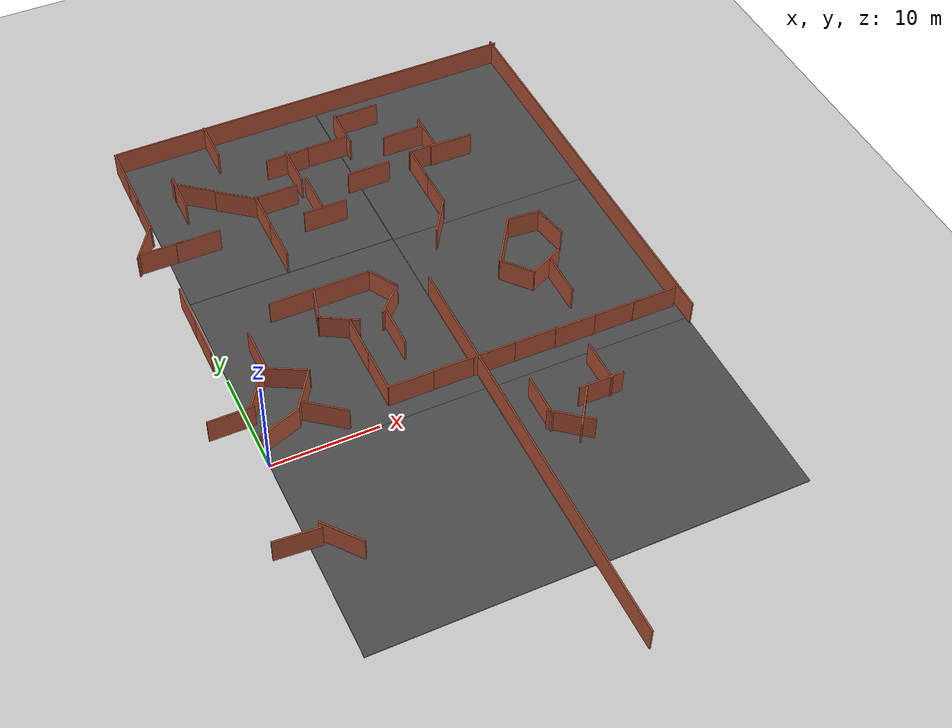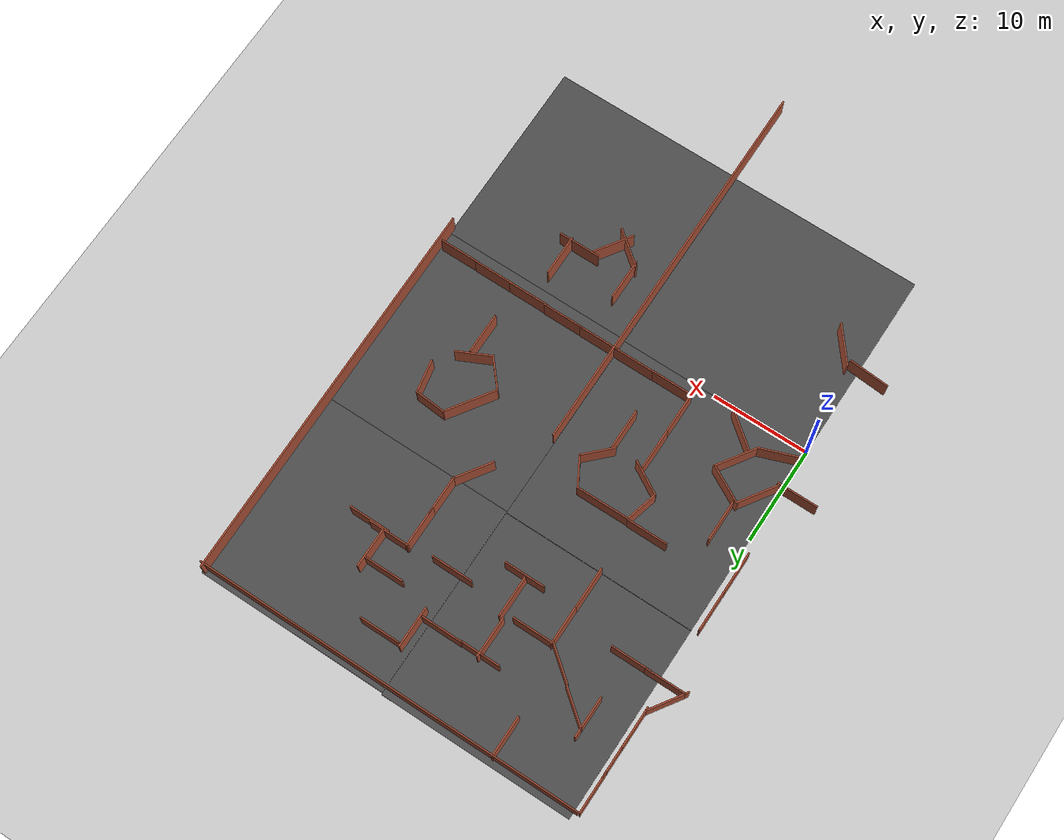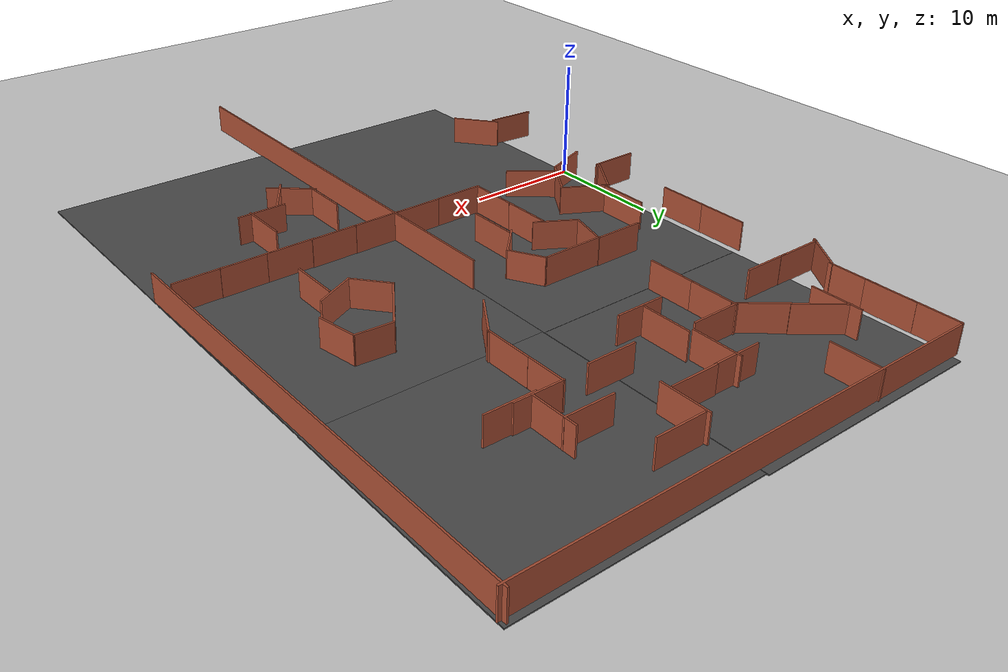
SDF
<sdf version="1.6">
 <world name="default">
  <model name="ground_plane">
   <static>1</static>
   <link name="link">
    <collision name="collision">
     <geometry><plane><normal>0 0 1</normal><size>100 100</size></plane></geometry>
     <surface><friction><ode><mu>100</mu><mu2>50</mu2></ode></friction></surface>
    </collision>
    <visual name="visual">
     <cast_shadows>0</cast_shadows>
     <geometry><plane><normal>0 0 1</normal><size>100 100</size></plane></geometry>
     <material>
      <script><uri>file://media/materials/scripts/gazebo.material</uri><name>Gazebo/Grey</name></script>
     </material>
    </visual>
   </link>
  </model>
  <model name="asphalt_plane">
   <static>1</static>
   <link name="link">
    <collision name="collision"><geometry><box><size>20 20 0.1</size></box></geometry></collision>
    <visual name="visual">
     <cast_shadows>0</cast_shadows>
     <geometry><box><size>20 20 0.1</size></box></geometry>
     <material>
      <script>
       <uri>model://asphalt_plane/materials/scripts</uri>
       <uri>model://asphalt_plane/materials/textures</uri>
       <name>vrc/asphalt</name>
      </script>
     </material>
    </visual>
   </link>
   <pose>10 10 0 0 -0 0</pose>
  </model>
  <model name="asphalt_plane_2">
   <static>1</static>
   <link name="link">
    <collision name="collision"><geometry><box><size>20 20 0.1</size></box></geometry></collision>
    <visual name="visual">
     <cast_shadows>0</cast_shadows>
     <geometry><box><size>20 20 0.1</size></box></geometry>
     <material>
      <script>
       <uri>model://asphalt_plane/materials/scripts</uri>
       <uri>model://asphalt_plane/materials/textures</uri>
       <name>vrc/asphalt</name>
      </script>
     </material>
    </visual>
   </link>
   <pose>10 -10 0 0 -0 0</pose>
  </model>
  <model name="longwall_0_clone">
   <pose>20.0948 -8.17942 0 0 0 -1.57092</pose>
   <link name="Wall_0">
    <collision name="Wall_0_Collision">
     <geometry><box><size>40.5 0.15 2.5</size></box></geometry>
     <pose>0 0 1.25 0 -0 0</pose>
    </collision>
    <visual name="Wall_0_Visual">
     <pose>0 0 1.25 0 -0 0</pose>
     <geometry><box><size>40.5 0.15 2.5</size></box></geometry>
     <material>
      <script><uri>file://media/materials/scripts/gazebo.material</uri><name>Gazebo/Bricks</name></script>
      <ambient>1 1 1 1</ambient>
     </material>
    </visual>
    <pose>1e-06 0 0 0 -0 0</pose>
   </link>
   <static>1</static>
  </model>
  <model name="room1">
   <pose>13.1523 12.4323 0 0 -0 0</pose>
   <link name="Wall_11">
    <collision name="Wall_11_Collision">
     <geometry><box><size>3.25 0.15 2.5</size></box></geometry>
     <pose>0 0 1.25 0 -0 0</pose>
    </collision>
    <visual name="Wall_11_Visual">
     <pose>0 0 1.25 0 -0 0</pose>
     <geometry><box><size>3.25 0.15 2.5</size></box></geometry>
     <material>
      <script><uri>file://media/materials/scripts/gazebo.material</uri><name>Gazebo/Bricks</name></script>
      <ambient>1 1 1 1</ambient>
     </material>
    </visual>
    <pose>3.12132 1.19483 0 0 0 -1.0472</pose>
   </link>
   <link name="Wall_12">
    <collision name="Wall_12_Collision">
     <geometry><box><size>3.5 0.15 2.5</size></box></geometry>
     <pose>0 0 1.25 0 -0 0</pose>
    </collision>
    <visual name="Wall_12_Visual">
     <pose>0 0 1.25 0 -0 0</pose>
     <geometry><box><size>3.5 0.15 2.5</size></box></geometry>
     <material>
      <script><uri>file://media/materials/scripts/gazebo.material</uri><name>Gazebo/Bricks</name></script>
      <ambient>1 1 1 1</ambient>
     </material>
    </visual>
    <pose>2.71192 -1.33192 0 0 0 -2.35619</pose>
   </link>
   <link name="Wall_7">
    <collision name="Wall_7_Collision">
     <geometry><box><size>5.52935 0.15 2.5</size></box></geometry>
     <pose>0 0 1.25 0 -0 0</pose>
    </collision>
    <visual name="Wall_7_Visual">
     <pose>0 0 1.25 0 -0 0</pose>
     <geometry><box><size>5.52935 0.15 2.5</size></box></geometry>
     <material>
      <script><uri>file://media/materials/scripts/gazebo.material</uri><name>Gazebo/Bricks</name></script>
      <ambient>1 1 1 1</ambient>
     </material>
    </visual>
    <pose>-0.343285 2.51793 0 0 0 -3.13444</pose>
   </link>
   <link name="Wall_8">
    <collision name="Wall_8_Collision">
     <geometry><box><size>3.5 0.15 2.5</size></box></geometry>
     <pose>0 0 1.25 0 -0 0</pose>
    </collision>
    <visual name="Wall_8_Visual">
     <pose>0 0 1.25 0 -0 0</pose>
     <geometry><box><size>3.5 0.15 2.5</size></box></geometry>
     <material>
      <script><uri>file://media/materials/scripts/gazebo.material</uri><name>Gazebo/Bricks</name></script>
      <ambient>1 1 1 1</ambient>
     </material>
    </visual>
    <pose>-3.46641 0.880761 0 0 0 -1.8326</pose>
   </link>
   <link name="Wall_9">
    <collision name="Wall_9_Collision">
     <geometry><box><size>3.75 0.15 2.5</size></box></geometry>
     <pose>0 0 1.25 0 -0 0</pose>
    </collision>
    <visual name="Wall_9_Visual">
     <pose>0 0 1.25 0 -0 0</pose>
     <geometry><box><size>3.75 0.15 2.5</size></box></geometry>
     <material>
      <script><uri>file://media/materials/scripts/gazebo.material</uri><name>Gazebo/Bricks</name></script>
      <ambient>1 1 1 1</ambient>
     </material>
    </visual>
    <pose>-2.34109 -1.63716 0 0 0 -0.523599</pose>
   </link>
   <static>1</static>
  </model>
  <model name="worlds_1">
   <pose>3 10.4406 0 0 -0 0</pose>
   <link name="Wall_0">
    <collision name="Wall_0_Collision">
     <geometry><box><size>4.25 0.15 2.5</size></box></geometry>
     <pose>0 0 1.25 0 -0 0</pose>
    </collision>
    <visual name="Wall_0_Visual">
     <pose>0 0 1.25 0 -0 0</pose>
     <geometry><box><size>4.25 0.15 2.5</size></box></geometry>
     <material>
      <script><uri>file://media/materials/scripts/gazebo.material</uri><name>Gazebo/Bricks</name></script>
      <ambient>1 1 1 1</ambient>
     </material>
    </visual>
    <pose>0 -0 0 0 -0 1.5708</pose>
   </link>
   <static>1</static>
  </model>
  <model name="worlds_2">
   <pose>4.42901 7.33195 0 0 -0 1.08023</pose>
   <link name="Wall_0">
    <collision name="Wall_0_Collision">
     <geometry><box><size>4.25 0.15 2.5</size></box></geometry>
     <pose>0 0 1.25 0 -0 0</pose>
    </collision>
    <visual name="Wall_0_Visual">
     <pose>0 0 1.25 0 -0 0</pose>
     <geometry><box><size>4.25 0.15 2.5</size></box></geometry>
     <material>
      <script><uri>file://media/materials/scripts/gazebo.material</uri><name>Gazebo/Bricks</name></script>
      <ambient>1 1 1 1</ambient>
     </material>
    </visual>
    <pose>0 -0 0 0 -0 1.5708</pose>
   </link>
   <static>1</static>
  </model>
  <model name="worlds_0_clone">
   <pose>-1 -9 0 0 -0 1.49697</pose>
   <link name="Wall_0">
    <collision name="Wall_0_Collision">
     <geometry><box><size>4.25 0.15 2.5</size></box></geometry>
     <pose>0 0 1.25 0 -0 0</pose>
    </collision>
    <visual name="Wall_0_Visual">
     <pose>0 0 1.25 0 -0 0</pose>
     <geometry><box><size>4.25 0.15 2.5</size></box></geometry>
     <material>
      <script><uri>file://media/materials/scripts/gazebo.material</uri><name>Gazebo/Bricks</name></script>
      <ambient>1 1 1 1</ambient>
     </material>
    </visual>
    <pose>0 -0 0 0 -0 1.5708</pose>
   </link>
   <static>1</static>
  </model>
  <model name="worlds_2_clone">
   <pose>2.34689 -10.1873 0 0 -0 0.67691</pose>
   <link name="Wall_0">
    <collision name="Wall_0_Collision">
     <geometry><box><size>4.25 0.15 2.5</size></box></geometry>
     <pose>0 0 1.25 0 -0 0</pose>
    </collision>
    <visual name="Wall_0_Visual">
     <pose>0 0 1.25 0 -0 0</pose>
     <geometry><box><size>4.25 0.15 2.5</size></box></geometry>
     <material>
      <script><uri>file://media/materials/scripts/gazebo.material</uri><name>Gazebo/Bricks</name></script>
      <ambient>1 1 1 1</ambient>
     </material>
    </visual>
    <pose>0 -0 0 0 -0 1.5708</pose>
   </link>
   <static>1</static>
  </model>
  <model name="worlds_1_clone">
   <pose>11.6021 8.07399 0 0 -0 0</pose>
   <link name="Wall_0">
    <collision name="Wall_0_Collision">
     <geometry><box><size>4.25 0.15 2.5</size></box></geometry>
     <pose>0 0 1.25 0 -0 0</pose>
    </collision>
    <visual name="Wall_0_Visual">
     <pose>0 0 1.25 0 -0 0</pose>
     <geometry><box><size>4.25 0.15 2.5</size></box></geometry>
     <material>
      <script><uri>file://media/materials/scripts/gazebo.material</uri><name>Gazebo/Bricks</name></script>
      <ambient>1 1 1 1</ambient>
     </material>
    </visual>
    <pose>0 -0 0 0 -0 1.5708</pose>
   </link>
   <static>1</static>
  </model>
  <model name="worlds_1_clone_0">
   <pose>11.6134 3.89135 0 0 -0 0</pose>
   <link name="Wall_0">
    <collision name="Wall_0_Collision">
     <geometry><box><size>4.25 0.15 2.5</size></box></geometry>
     <pose>0 0 1.25 0 -0 0</pose>
    </collision>
    <visual name="Wall_0_Visual">
     <pose>0 0 1.25 0 -0 0</pose>
     <geometry><box><size>4.25 0.15 2.5</size></box></geometry>
     <material>
      <script><uri>file://media/materials/scripts/gazebo.material</uri><name>Gazebo/Bricks</name></script>
      <ambient>1 1 1 1</ambient>
     </material>
    </visual>
    <pose>0 -0 0 0 -0 1.5708</pose>
   </link>
   <static>1</static>
  </model>
  <model name="worlds_1_clone_0_clone">
   <pose>13.736 1.79456 0 0 0 -1.57092</pose>
   <link name="Wall_0">
    <collision name="Wall_0_Collision">
     <geometry><box><size>4.25 0.15 2.5</size></box></geometry>
     <pose>0 0 1.25 0 -0 0</pose>
    </collision>
    <visual name="Wall_0_Visual">
     <pose>0 0 1.25 0 -0 0</pose>
     <geometry><box><size>4.25 0.15 2.5</size></box></geometry>
     <material>
      <script><uri>file://media/materials/scripts/gazebo.material</uri><name>Gazebo/Bricks</name></script>
      <ambient>1 1 1 1</ambient>
     </material>
    </visual>
    <pose>0 -0 0 0 -0 1.5708</pose>
   </link>
   <static>1</static>
  </model>
  <model name="worlds_1_clone_0_clone_clone">
   <pose>17.9203 1.82357 0 0 0 -1.57092</pose>
   <link name="Wall_0">
    <collision name="Wall_0_Collision">
     <geometry><box><size>4.25 0.15 2.5</size></box></geometry>
     <pose>0 0 1.25 0 -0 0</pose>
    </collision>
    <visual name="Wall_0_Visual">
     <pose>0 0 1.25 0 -0 0</pose>
     <geometry><box><size>4.25 0.15 2.5</size></box></geometry>
     <material>
      <script><uri>file://media/materials/scripts/gazebo.material</uri><name>Gazebo/Bricks</name></script>
      <ambient>1 1 1 1</ambient>
     </material>
    </visual>
    <pose>0 -0 0 0 -0 1.5708</pose>
   </link>
   <static>1</static>
  </model>
  <model name="worlds_1_clone_0_clone_clone_0">
   <pose>8 15 0 0 0 -1.57092</pose>
   <link name="Wall_0">
    <collision name="Wall_0_Collision">
     <geometry><box><size>4.25 0.15 2.5</size></box></geometry>
     <pose>0 0 1.25 0 -0 0</pose>
    </collision>
    <visual name="Wall_0_Visual">
     <pose>0 0 1.25 0 -0 0</pose>
     <geometry><box><size>4.25 0.15 2.5</size></box></geometry>
     <material>
      <script><uri>file://media/materials/scripts/gazebo.material</uri><name>Gazebo/Bricks</name></script>
      <ambient>1 1 1 1</ambient>
     </material>
    </visual>
    <pose>0 -0 0 0 -0 1.5708</pose>
   </link>
   <static>1</static>
  </model>
  <model name="worlds_1_clone_1_clone_0">
   <pose>-0.708445 17.9147 0 0 -0 0</pose>
   <link name="Wall_0">
    <collision name="Wall_0_Collision">
     <geometry><box><size>4.25 0.15 2.5</size></box></geometry>
     <pose>0 0 1.25 0 -0 0</pose>
    </collision>
    <visual name="Wall_0_Visual">
     <pose>0 0 1.25 0 -0 0</pose>
     <geometry><box><size>4.25 0.15 2.5</size></box></geometry>
     <material>
      <script><uri>file://media/materials/scripts/gazebo.material</uri><name>Gazebo/Bricks</name></script>
      <ambient>1 1 1 1</ambient>
     </material>
    </visual>
    <pose>0 -0 0 0 -0 1.5708</pose>
   </link>
   <static>1</static>
  </model>
  <model name="worlds_1_clone_1_clone_1">
   <pose>-0.716318 13.714 0 0 -0 0</pose>
   <link name="Wall_0">
    <collision name="Wall_0_Collision">
     <geometry><box><size>4.25 0.15 2.5</size></box></geometry>
     <pose>0 0 1.25 0 -0 0</pose>
    </collision>
    <visual name="Wall_0_Visual">
     <pose>0 0 1.25 0 -0 0</pose>
     <geometry><box><size>4.25 0.15 2.5</size></box></geometry>
     <material>
      <script><uri>file://media/materials/scripts/gazebo.material</uri><name>Gazebo/Bricks</name></script>
      <ambient>1 1 1 1</ambient>
     </material>
    </visual>
    <pose>0 -0 0 0 -0 1.5708</pose>
   </link>
   <static>1</static>
  </model>
  <model name="worlds_1_clone_1_clone_7_clone_clone">
   <pose>1.48825 6.4581 0 0 0 -0.589381</pose>
   <link name="Wall_0">
    <collision name="Wall_0_Collision">
     <geometry><box><size>4.25 0.15 2.5</size></box></geometry>
     <pose>0 0 1.25 0 -0 0</pose>
    </collision>
    <visual name="Wall_0_Visual">
     <pose>0 0 1.25 0 -0 0</pose>
     <geometry><box><size>4.25 0.15 2.5</size></box></geometry>
     <material>
      <script><uri>file://media/materials/scripts/gazebo.material</uri><name>Gazebo/Bricks</name></script>
      <ambient>1 1 1 1</ambient>
     </material>
    </visual>
    <pose>0 -0 0 0 -0 1.5708</pose>
   </link>
   <static>1</static>
  </model>
  <model name="worlds_1_clone_1_clone_7_clone_clone_clone">
   <pose>5 4.58681 0 0 0 -0.589381</pose>
   <link name="Wall_0">
    <collision name="Wall_0_Collision">
     <geometry><box><size>4.25 0.15 2.5</size></box></geometry>
     <pose>0 0 1.25 0 -0 0</pose>
    </collision>
    <visual name="Wall_0_Visual">
     <pose>0 0 1.25 0 -0 0</pose>
     <geometry><box><size>4.25 0.15 2.5</size></box></geometry>
     <material>
      <script><uri>file://media/materials/scripts/gazebo.material</uri><name>Gazebo/Bricks</name></script>
      <ambient>1 1 1 1</ambient>
     </material>
    </visual>
    <pose>0 -0 0 0 -0 1.5708</pose>
   </link>
   <static>1</static>
  </model>
  <model name="worlds_1_clone_0_clone_clone_0_clone_clone_0_clone_clone">
   <pose>-1.54431 4.60476 0 0 0 -1.57092</pose>
   <link name="Wall_0">
    <collision name="Wall_0_Collision">
     <geometry><box><size>4.25 0.15 2.5</size></box></geometry>
     <pose>0 0 1.25 0 -0 0</pose>
    </collision>
    <visual name="Wall_0_Visual">
     <pose>0 0 1.25 0 -0 0</pose>
     <geometry><box><size>4.25 0.15 2.5</size></box></geometry>
     <material>
      <script><uri>file://media/materials/scripts/gazebo.material</uri><name>Gazebo/Bricks</name></script>
      <ambient>1 1 1 1</ambient>
     </material>
    </visual>
    <pose>0 -0 0 0 -0 1.5708</pose>
   </link>
   <static>1</static>
  </model>
  <model name="worlds_1_clone_0_clone_clone_0_clone_clone_0_clone_clone_0">
   <pose>1.87166 2.0906 0 0 0 -1.22347</pose>
   <link name="Wall_0">
    <collision name="Wall_0_Collision">
     <geometry><box><size>4.25 0.15 2.5</size></box></geometry>
     <pose>0 0 1.25 0 -0 0</pose>
    </collision>
    <visual name="Wall_0_Visual">
     <pose>0 0 1.25 0 -0 0</pose>
     <geometry><box><size>4.25 0.15 2.5</size></box></geometry>
     <material>
      <script><uri>file://media/materials/scripts/gazebo.material</uri><name>Gazebo/Bricks</name></script>
      <ambient>1 1 1 1</ambient>
     </material>
    </visual>
    <pose>0 -0 0 0 -0 1.5708</pose>
   </link>
   <static>1</static>
  </model>
  <model name="worlds_1_clone_1_clone_7_clone_clone_0">
   <pose>6.00131 2.13117 0 0 -0 0.90029</pose>
   <link name="Wall_0">
    <collision name="Wall_0_Collision">
     <geometry><box><size>4.25 0.15 2.5</size></box></geometry>
     <pose>0 0 1.25 0 -0 0</pose>
    </collision>
    <visual name="Wall_0_Visual">
     <pose>0 0 1.25 0 -0 0</pose>
     <geometry><box><size>4.25 0.15 2.5</size></box></geometry>
     <material>
      <script><uri>file://media/materials/scripts/gazebo.material</uri><name>Gazebo/Bricks</name></script>
      <ambient>1 1 1 1</ambient>
     </material>
    </visual>
    <pose>0 -0 0 0 -0 1.5708</pose>
   </link>
   <static>1</static>
  </model>
  <model name="worlds_1_clone_clone">
   <pose>15 8 0 0 -0 0</pose>
   <link name="Wall_0">
    <collision name="Wall_0_Collision">
     <geometry><box><size>4.25 0.15 2.5</size></box></geometry>
     <pose>0 0 1.25 0 -0 0</pose>
    </collision>
    <visual name="Wall_0_Visual">
     <pose>0 0 1.25 0 -0 0</pose>
     <geometry><box><size>4.25 0.15 2.5</size></box></geometry>
     <material>
      <script><uri>file://media/materials/scripts/gazebo.material</uri><name>Gazebo/Bricks</name></script>
      <ambient>1 1 1 1</ambient>
     </material>
    </visual>
    <pose>0 -0 0 0 -0 1.5708</pose>
   </link>
   <static>1</static>
  </model>
  <model name="asphalt_plane_4_clone_2">
   <static>1</static>
   <link name="link">
    <collision name="collision"><geometry><box><size>20 20 0.1</size></box></geometry></collision>
    <visual name="visual">
     <cast_shadows>0</cast_shadows>
     <geometry><box><size>20 20 0.1</size></box></geometry>
     <material>
      <script>
       <uri>model://asphalt_plane/materials/scripts</uri>
       <uri>model://asphalt_plane/materials/textures</uri>
       <name>vrc/asphalt</name>
      </script>
     </material>
    </visual>
   </link>
   <pose>30.0276 29.8546 0 0 -0 0</pose>
  </model>
  <model name="asphalt_plane_4_clone_3">
   <static>1</static>
   <link name="link">
    <collision name="collision"><geometry><box><size>20 20 0.1</size></box></geometry></collision>
    <visual name="visual">
     <cast_shadows>0</cast_shadows>
     <geometry><box><size>20 20 0.1</size></box></geometry>
     <material>
      <script>
       <uri>model://asphalt_plane/materials/scripts</uri>
       <uri>model://asphalt_plane/materials/textures</uri>
       <name>vrc/asphalt</name>
      </script>
     </material>
    </visual>
   </link>
   <pose>9.98908 30.0241 0 0 -0 0</pose>
  </model>
  <model name="asphalt_plane_4_clone_8">
   <static>1</static>
   <link name="link">
    <collision name="collision"><geometry><box><size>20 20 0.1</size></box></geometry></collision>
    <visual name="visual">
     <cast_shadows>0</cast_shadows>
     <geometry><box><size>20 20 0.1</size></box></geometry>
     <material>
      <script>
       <uri>model://asphalt_plane/materials/scripts</uri>
       <uri>model://asphalt_plane/materials/textures</uri>
       <name>vrc/asphalt</name>
      </script>
     </material>
    </visual>
   </link>
   <pose>29.9869 -10.112 0 0 -0 0</pose>
  </model>
  <model name="asphalt_plane_4_clone_13">
   <static>1</static>
   <link name="link">
    <collision name="collision"><geometry><box><size>20 20 0.1</size></box></geometry></collision>
    <visual name="visual">
     <cast_shadows>0</cast_shadows>
     <geometry><box><size>20 20 0.1</size></box></geometry>
     <material>
      <script>
       <uri>model://asphalt_plane/materials/scripts</uri>
       <uri>model://asphalt_plane/materials/textures</uri>
       <name>vrc/asphalt</name>
      </script>
     </material>
    </visual>
   </link>
   <pose>30.0035 9.87573 0 0 -0 0</pose>
  </model>
  <model name="longwall_clone_clone">
   <pose>19.8044 39.2921 0 0 -0 0</pose>
   <link name="Wall_0">
    <collision name="Wall_0_Collision">
     <geometry><box><size>40.5 0.15 2.5</size></box></geometry>
     <pose>0 0 1.25 0 -0 0</pose>
    </collision>
    <visual name="Wall_0_Visual">
     <pose>0 0 1.25 0 -0 0</pose>
     <geometry><box><size>40.5 0.15 2.5</size></box></geometry>
     <material>
      <script><uri>file://media/materials/scripts/gazebo.material</uri><name>Gazebo/Bricks</name></script>
      <ambient>1 1 1 1</ambient>
     </material>
    </visual>
    <pose>1e-06 0 0 0 -0 0</pose>
   </link>
   <static>1</static>
  </model>
  <model name="longwall_clone_clone_3_clone_2">
   <pose>39.8062 19.4808 0 0 0 -1.56602</pose>
   <link name="Wall_0">
    <collision name="Wall_0_Collision">
     <geometry><box><size>40.5 0.15 2.5</size></box></geometry>
     <pose>0 0 1.25 0 -0 0</pose>
    </collision>
    <visual name="Wall_0_Visual">
     <pose>0 0 1.25 0 -0 0</pose>
     <geometry><box><size>40.5 0.15 2.5</size></box></geometry>
     <material>
      <script><uri>file://media/materials/scripts/gazebo.material</uri><name>Gazebo/Bricks</name></script>
      <ambient>1 1 1 1</ambient>
     </material>
    </visual>
    <pose>1e-06 0 0 0 -0 0</pose>
   </link>
   <static>1</static>
  </model>
  <model name="worlds_1_clone_0_clone_clone_0_clone_clone_clone">
   <pose>21.7506 1.79775 0 0 0 -1.57092</pose>
   <link name="Wall_0">
    <collision name="Wall_0_Collision">
     <geometry><box><size>4.25 0.15 2.5</size></box></geometry>
     <pose>0 0 1.25 0 -0 0</pose>
    </collision>
    <visual name="Wall_0_Visual">
     <pose>0 0 1.25 0 -0 0</pose>
     <geometry><box><size>4.25 0.15 2.5</size></box></geometry>
     <material>
      <script><uri>file://media/materials/scripts/gazebo.material</uri><name>Gazebo/Bricks</name></script>
      <ambient>1 1 1 1</ambient>
     </material>
    </visual>
    <pose>0 -0 0 0 -0 1.5708</pose>
   </link>
   <static>1</static>
  </model>
  <model name="worlds_1_clone_0_clone_clone_0_clone_clone_clone_0">
   <pose>25.7367 1.77784 0 0 0 -1.57092</pose>
   <link name="Wall_0">
    <collision name="Wall_0_Collision">
     <geometry><box><size>4.25 0.15 2.5</size></box></geometry>
     <pose>0 0 1.25 0 -0 0</pose>
    </collision>
    <visual name="Wall_0_Visual">
     <pose>0 0 1.25 0 -0 0</pose>
     <geometry><box><size>4.25 0.15 2.5</size></box></geometry>
     <material>
      <script><uri>file://media/materials/scripts/gazebo.material</uri><name>Gazebo/Bricks</name></script>
      <ambient>1 1 1 1</ambient>
     </material>
    </visual>
    <pose>0 -0 0 0 -0 1.5708</pose>
   </link>
   <static>1</static>
  </model>
  <model name="worlds_1_clone_0_clone_clone_0_clone_clone_clone_1">
   <pose>29.6674 1.71383 0 0 0 -1.57092</pose>
   <link name="Wall_0">
    <collision name="Wall_0_Collision">
     <geometry><box><size>4.25 0.15 2.5</size></box></geometry>
     <pose>0 0 1.25 0 -0 0</pose>
    </collision>
    <visual name="Wall_0_Visual">
     <pose>0 0 1.25 0 -0 0</pose>
     <geometry><box><size>4.25 0.15 2.5</size></box></geometry>
     <material>
      <script><uri>file://media/materials/scripts/gazebo.material</uri><name>Gazebo/Bricks</name></script>
      <ambient>1 1 1 1</ambient>
     </material>
    </visual>
    <pose>0 -0 0 0 -0 1.5708</pose>
   </link>
   <static>1</static>
  </model>
  <model name="worlds_1_clone_0_clone_clone_0_clone_clone_clone_2">
   <pose>33.5636 1.70747 0 0 0 -1.57092</pose>
   <link name="Wall_0">
    <collision name="Wall_0_Collision">
     <geometry><box><size>4.25 0.15 2.5</size></box></geometry>
     <pose>0 0 1.25 0 -0 0</pose>
    </collision>
    <visual name="Wall_0_Visual">
     <pose>0 0 1.25 0 -0 0</pose>
     <geometry><box><size>4.25 0.15 2.5</size></box></geometry>
     <material>
      <script><uri>file://media/materials/scripts/gazebo.material</uri><name>Gazebo/Bricks</name></script>
      <ambient>1 1 1 1</ambient>
     </material>
    </visual>
    <pose>0 -0 0 0 -0 1.5708</pose>
   </link>
   <static>1</static>
  </model>
  <model name="worlds_1_clone_0_clone_clone_0_clone_clone_clone_3">
   <pose>37.4411 1.6799 0 0 0 -1.57092</pose>
   <link name="Wall_0">
    <collision name="Wall_0_Collision">
     <geometry><box><size>4.25 0.15 2.5</size></box></geometry>
     <pose>0 0 1.25 0 -0 0</pose>
    </collision>
    <visual name="Wall_0_Visual">
     <pose>0 0 1.25 0 -0 0</pose>
     <geometry><box><size>4.25 0.15 2.5</size></box></geometry>
     <material>
      <script><uri>file://media/materials/scripts/gazebo.material</uri><name>Gazebo/Bricks</name></script>
      <ambient>1 1 1 1</ambient>
     </material>
    </visual>
    <pose>0 -0 0 0 -0 1.5708</pose>
   </link>
   <static>1</static>
  </model>
  <model name="room1_clone_2">
   <pose>30.5801 12.309 0 0 -0 0.969844</pose>
   <link name="Wall_11">
    <collision name="Wall_11_Collision">
     <geometry><box><size>3.25 0.15 2.5</size></box></geometry>
     <pose>0 0 1.25 0 -0 0</pose>
    </collision>
    <visual name="Wall_11_Visual">
     <pose>0 0 1.25 0 -0 0</pose>
     <geometry><box><size>3.25 0.15 2.5</size></box></geometry>
     <material>
      <script><uri>file://media/materials/scripts/gazebo.material</uri><name>Gazebo/Bricks</name></script>
      <ambient>1 1 1 1</ambient>
     </material>
    </visual>
    <pose>3.12132 1.19483 0 0 0 -1.0472</pose>
   </link>
   <link name="Wall_12">
    <collision name="Wall_12_Collision">
     <geometry><box><size>3.5 0.15 2.5</size></box></geometry>
     <pose>0 0 1.25 0 -0 0</pose>
    </collision>
    <visual name="Wall_12_Visual">
     <pose>0 0 1.25 0 -0 0</pose>
     <geometry><box><size>3.5 0.15 2.5</size></box></geometry>
     <material>
      <script><uri>file://media/materials/scripts/gazebo.material</uri><name>Gazebo/Bricks</name></script>
      <ambient>1 1 1 1</ambient>
     </material>
    </visual>
    <pose>2.71192 -1.33192 0 0 0 -2.35619</pose>
   </link>
   <link name="Wall_7">
    <collision name="Wall_7_Collision">
     <geometry><box><size>5.52935 0.15 2.5</size></box></geometry>
     <pose>0 0 1.25 0 -0 0</pose>
    </collision>
    <visual name="Wall_7_Visual">
     <pose>0 0 1.25 0 -0 0</pose>
     <geometry><box><size>5.52935 0.15 2.5</size></box></geometry>
     <material>
      <script><uri>file://media/materials/scripts/gazebo.material</uri><name>Gazebo/Bricks</name></script>
      <ambient>1 1 1 1</ambient>
     </material>
    </visual>
    <pose>-0.343285 2.51793 0 0 0 -3.13444</pose>
   </link>
   <link name="Wall_8">
    <collision name="Wall_8_Collision">
     <geometry><box><size>3.5 0.15 2.5</size></box></geometry>
     <pose>0 0 1.25 0 -0 0</pose>
    </collision>
    <visual name="Wall_8_Visual">
     <pose>0 0 1.25 0 -0 0</pose>
     <geometry><box><size>3.5 0.15 2.5</size></box></geometry>
     <material>
      <script><uri>file://media/materials/scripts/gazebo.material</uri><name>Gazebo/Bricks</name></script>
      <ambient>1 1 1 1</ambient>
     </material>
    </visual>
    <pose>-3.46641 0.880761 0 0 0 -1.8326</pose>
   </link>
   <link name="Wall_9">
    <collision name="Wall_9_Collision">
     <geometry><box><size>3.75 0.15 2.5</size></box></geometry>
     <pose>0 0 1.25 0 -0 0</pose>
    </collision>
    <visual name="Wall_9_Visual">
     <pose>0 0 1.25 0 -0 0</pose>
     <geometry><box><size>3.75 0.15 2.5</size></box></geometry>
     <material>
      <script><uri>file://media/materials/scripts/gazebo.material</uri><name>Gazebo/Bricks</name></script>
      <ambient>1 1 1 1</ambient>
     </material>
    </visual>
    <pose>-2.34109 -1.63716 0 0 0 -0.523599</pose>
   </link>
   <static>1</static>
  </model>
  <model name="worlds_1_clone_clone_clone">
   <pose>31.0446 7.33518 0 0 -0 0</pose>
   <link name="Wall_0">
    <collision name="Wall_0_Collision">
     <geometry><box><size>4.25 0.15 2.5</size></box></geometry>
     <pose>0 0 1.25 0 -0 0</pose>
    </collision>
    <visual name="Wall_0_Visual">
     <pose>0 0 1.25 0 -0 0</pose>
     <geometry><box><size>4.25 0.15 2.5</size></box></geometry>
     <material>
      <script><uri>file://media/materials/scripts/gazebo.material</uri><name>Gazebo/Bricks</name></script>
      <ambient>1 1 1 1</ambient>
     </material>
    </visual>
    <pose>0 -0 0 0 -0 1.5708</pose>
   </link>
   <static>1</static>
  </model>
  <model name="worlds_1_clone_clone_0">
   <pose>9.58446 22.2096 0 0 -0 0</pose>
   <link name="Wall_0">
    <collision name="Wall_0_Collision">
     <geometry><box><size>4.25 0.15 2.5</size></box></geometry>
     <pose>0 0 1.25 0 -0 0</pose>
    </collision>
    <visual name="Wall_0_Visual">
     <pose>0 0 1.25 0 -0 0</pose>
     <geometry><box><size>4.25 0.15 2.5</size></box></geometry>
     <material>
      <script><uri>file://media/materials/scripts/gazebo.material</uri><name>Gazebo/Bricks</name></script>
      <ambient>1 1 1 1</ambient>
     </material>
    </visual>
    <pose>0 -0 0 0 -0 1.5708</pose>
   </link>
   <static>1</static>
  </model>
  <model name="worlds_1_clone_clone_1">
   <pose>25.4189 22.4288 0 0 -0 0</pose>
   <link name="Wall_0">
    <collision name="Wall_0_Collision">
     <geometry><box><size>4.25 0.15 2.5</size></box></geometry>
     <pose>0 0 1.25 0 -0 0</pose>
    </collision>
    <visual name="Wall_0_Visual">
     <pose>0 0 1.25 0 -0 0</pose>
     <geometry><box><size>4.25 0.15 2.5</size></box></geometry>
     <material>
      <script><uri>file://media/materials/scripts/gazebo.material</uri><name>Gazebo/Bricks</name></script>
      <ambient>1 1 1 1</ambient>
     </material>
    </visual>
    <pose>0 -0 0 0 -0 1.5708</pose>
   </link>
   <static>1</static>
  </model>
  <model name="worlds_1_clone_clone_2">
   <pose>25.4102 25.8949 0 0 -0 0</pose>
   <link name="Wall_0">
    <collision name="Wall_0_Collision">
     <geometry><box><size>4.25 0.15 2.5</size></box></geometry>
     <pose>0 0 1.25 0 -0 0</pose>
    </collision>
    <visual name="Wall_0_Visual">
     <pose>0 0 1.25 0 -0 0</pose>
     <geometry><box><size>4.25 0.15 2.5</size></box></geometry>
     <material>
      <script><uri>file://media/materials/scripts/gazebo.material</uri><name>Gazebo/Bricks</name></script>
      <ambient>1 1 1 1</ambient>
     </material>
    </visual>
    <pose>0 -0 0 0 -0 1.5708</pose>
   </link>
   <static>1</static>
  </model>
  <model name="worlds_1_clone_0_clone_clone_0_clone_0">
   <pose>27.3992 27.8784 0 0 0 -1.57092</pose>
   <link name="Wall_0">
    <collision name="Wall_0_Collision">
     <geometry><box><size>4.25 0.15 2.5</size></box></geometry>
     <pose>0 0 1.25 0 -0 0</pose>
    </collision>
    <visual name="Wall_0_Visual">
     <pose>0 0 1.25 0 -0 0</pose>
     <geometry><box><size>4.25 0.15 2.5</size></box></geometry>
     <material>
      <script><uri>file://media/materials/scripts/gazebo.material</uri><name>Gazebo/Bricks</name></script>
      <ambient>1 1 1 1</ambient>
     </material>
    </visual>
    <pose>0 -0 0 0 -0 1.5708</pose>
   </link>
   <static>1</static>
  </model>
  <model name="worlds_1_clone_0_clone_clone_0_clone_1">
   <pose>29.6307 27.7333 0 0 0 -1.57092</pose>
   <link name="Wall_0">
    <collision name="Wall_0_Collision">
     <geometry><box><size>4.25 0.15 2.5</size></box></geometry>
     <pose>0 0 1.25 0 -0 0</pose>
    </collision>
    <visual name="Wall_0_Visual">
     <pose>0 0 1.25 0 -0 0</pose>
     <geometry><box><size>4.25 0.15 2.5</size></box></geometry>
     <material>
      <script><uri>file://media/materials/scripts/gazebo.material</uri><name>Gazebo/Bricks</name></script>
      <ambient>1 1 1 1</ambient>
     </material>
    </visual>
    <pose>0 -0 0 0 -0 1.5708</pose>
   </link>
   <static>1</static>
  </model>
  <model name="worlds_1_clone_0_clone_clone_0_clone_2">
   <pose>15.0632 24.3352 0 0 0 -1.57092</pose>
   <link name="Wall_0">
    <collision name="Wall_0_Collision">
     <geometry><box><size>4.25 0.15 2.5</size></box></geometry>
     <pose>0 0 1.25 0 -0 0</pose>
    </collision>
    <visual name="Wall_0_Visual">
     <pose>0 0 1.25 0 -0 0</pose>
     <geometry><box><size>4.25 0.15 2.5</size></box></geometry>
     <material>
      <script><uri>file://media/materials/scripts/gazebo.material</uri><name>Gazebo/Bricks</name></script>
      <ambient>1 1 1 1</ambient>
     </material>
    </visual>
    <pose>0 -0 0 0 -0 1.5708</pose>
   </link>
   <static>1</static>
  </model>
  <model name="worlds_1_clone_0_clone_clone_0_clone_3">
   <pose>20.8072 27.4621 0 0 0 -1.57092</pose>
   <link name="Wall_0">
    <collision name="Wall_0_Collision">
     <geometry><box><size>4.25 0.15 2.5</size></box></geometry>
     <pose>0 0 1.25 0 -0 0</pose>
    </collision>
    <visual name="Wall_0_Visual">
     <pose>0 0 1.25 0 -0 0</pose>
     <geometry><box><size>4.25 0.15 2.5</size></box></geometry>
     <material>
      <script><uri>file://media/materials/scripts/gazebo.material</uri><name>Gazebo/Bricks</name></script>
      <ambient>1 1 1 1</ambient>
     </material>
    </visual>
    <pose>0 -0 0 0 -0 1.5708</pose>
   </link>
   <static>1</static>
  </model>
  <model name="worlds_1_clone_0_clone_clone_0_clone_4">
   <pose>14.4358 32.4576 0 0 0 -1.57092</pose>
   <link name="Wall_0">
    <collision name="Wall_0_Collision">
     <geometry><box><size>4.25 0.15 2.5</size></box></geometry>
     <pose>0 0 1.25 0 -0 0</pose>
    </collision>
    <visual name="Wall_0_Visual">
     <pose>0 0 1.25 0 -0 0</pose>
     <geometry><box><size>4.25 0.15 2.5</size></box></geometry>
     <material>
      <script><uri>file://media/materials/scripts/gazebo.material</uri><name>Gazebo/Bricks</name></script>
      <ambient>1 1 1 1</ambient>
     </material>
    </visual>
    <pose>0 -0 0 0 -0 1.5708</pose>
   </link>
   <static>1</static>
  </model>
  <model name="worlds_1_clone_clone_0_clone">
   <pose>14.4379 30.7736 0 0 -0 0</pose>
   <link name="Wall_0">
    <collision name="Wall_0_Collision">
     <geometry><box><size>4.25 0.15 2.5</size></box></geometry>
     <pose>0 0 1.25 0 -0 0</pose>
    </collision>
    <visual name="Wall_0_Visual">
     <pose>0 0 1.25 0 -0 0</pose>
     <geometry><box><size>4.25 0.15 2.5</size></box></geometry>
     <material>
      <script><uri>file://media/materials/scripts/gazebo.material</uri><name>Gazebo/Bricks</name></script>
      <ambient>1 1 1 1</ambient>
     </material>
    </visual>
    <pose>0 -0 0 0 -0 1.5708</pose>
   </link>
   <static>1</static>
  </model>
  <model name="worlds_1_clone_clone_0_clone_0">
   <pose>8.43735 37.3357 0 0 -0 0</pose>
   <link name="Wall_0">
    <collision name="Wall_0_Collision">
     <geometry><box><size>4.25 0.15 2.5</size></box></geometry>
     <pose>0 0 1.25 0 -0 0</pose>
    </collision>
    <visual name="Wall_0_Visual">
     <pose>0 0 1.25 0 -0 0</pose>
     <geometry><box><size>4.25 0.15 2.5</size></box></geometry>
     <material>
      <script><uri>file://media/materials/scripts/gazebo.material</uri><name>Gazebo/Bricks</name></script>
      <ambient>1 1 1 1</ambient>
     </material>
    </visual>
    <pose>0 -0 0 0 -0 1.5708</pose>
   </link>
   <static>1</static>
  </model>
  <model name="worlds_1_clone_clone_0_clone_1">
   <pose>9.59049 26.2097 0 0 -0 0</pose>
   <link name="Wall_0">
    <collision name="Wall_0_Collision">
     <geometry><box><size>4.25 0.15 2.5</size></box></geometry>
     <pose>0 0 1.25 0 -0 0</pose>
    </collision>
    <visual name="Wall_0_Visual">
     <pose>0 0 1.25 0 -0 0</pose>
     <geometry><box><size>4.25 0.15 2.5</size></box></geometry>
     <material>
      <script><uri>file://media/materials/scripts/gazebo.material</uri><name>Gazebo/Bricks</name></script>
      <ambient>1 1 1 1</ambient>
     </material>
    </visual>
    <pose>0 -0 0 0 -0 1.5708</pose>
   </link>
   <static>1</static>
  </model>
  <model name="worlds_1_clone_0_clone_clone_0_clone_2_clone">
   <pose>11.6197 28.1564 0 0 0 -1.57092</pose>
   <link name="Wall_0">
    <collision name="Wall_0_Collision">
     <geometry><box><size>4.25 0.15 2.5</size></box></geometry>
     <pose>0 0 1.25 0 -0 0</pose>
    </collision>
    <visual name="Wall_0_Visual">
     <pose>0 0 1.25 0 -0 0</pose>
     <geometry><box><size>4.25 0.15 2.5</size></box></geometry>
     <material>
      <script><uri>file://media/materials/scripts/gazebo.material</uri><name>Gazebo/Bricks</name></script>
      <ambient>1 1 1 1</ambient>
     </material>
    </visual>
    <pose>0 -0 0 0 -0 1.5708</pose>
   </link>
   <static>1</static>
  </model>
  <model name="worlds_1_clone_clone_0_clone_clone">
   <pose>14.8586 26.623 0 0 -0 0</pose>
   <link name="Wall_0">
    <collision name="Wall_0_Collision">
     <geometry><box><size>4.25 0.15 2.5</size></box></geometry>
     <pose>0 0 1.25 0 -0 0</pose>
    </collision>
    <visual name="Wall_0_Visual">
     <pose>0 0 1.25 0 -0 0</pose>
     <geometry><box><size>4.25 0.15 2.5</size></box></geometry>
     <material>
      <script><uri>file://media/materials/scripts/gazebo.material</uri><name>Gazebo/Bricks</name></script>
      <ambient>1 1 1 1</ambient>
     </material>
    </visual>
    <pose>0 -0 0 0 -0 1.5708</pose>
   </link>
   <static>1</static>
  </model>
  <model name="worlds_1_clone_0_clone_clone_0_clone_3_clone">
   <pose>18.467 32.5142 0 0 0 -1.57092</pose>
   <link name="Wall_0">
    <collision name="Wall_0_Collision">
     <geometry><box><size>4.25 0.15 2.5</size></box></geometry>
     <pose>0 0 1.25 0 -0 0</pose>
    </collision>
    <visual name="Wall_0_Visual">
     <pose>0 0 1.25 0 -0 0</pose>
     <geometry><box><size>4.25 0.15 2.5</size></box></geometry>
     <material>
      <script><uri>file://media/materials/scripts/gazebo.material</uri><name>Gazebo/Bricks</name></script>
      <ambient>1 1 1 1</ambient>
     </material>
    </visual>
    <pose>0 -0 0 0 -0 1.5708</pose>
   </link>
   <static>1</static>
  </model>
  <model name="worlds_1_clone_0_clone_clone_0_clone_3_clone_0">
   <pose>23.0187 35.5975 0 0 0 -1.57092</pose>
   <link name="Wall_0">
    <collision name="Wall_0_Collision">
     <geometry><box><size>4.25 0.15 2.5</size></box></geometry>
     <pose>0 0 1.25 0 -0 0</pose>
    </collision>
    <visual name="Wall_0_Visual">
     <pose>0 0 1.25 0 -0 0</pose>
     <geometry><box><size>4.25 0.15 2.5</size></box></geometry>
     <material>
      <script><uri>file://media/materials/scripts/gazebo.material</uri><name>Gazebo/Bricks</name></script>
      <ambient>1 1 1 1</ambient>
     </material>
    </visual>
    <pose>0 -0 0 0 -0 1.5708</pose>
   </link>
   <static>1</static>
  </model>
  <model name="worlds_1_clone_clone_0_clone_clone_clone">
   <pose>20.7191 33.783 0 0 -0 0</pose>
   <link name="Wall_0">
    <collision name="Wall_0_Collision">
     <geometry><box><size>4.25 0.15 2.5</size></box></geometry>
     <pose>0 0 1.25 0 -0 0</pose>
    </collision>
    <visual name="Wall_0_Visual">
     <pose>0 0 1.25 0 -0 0</pose>
     <geometry><box><size>4.25 0.15 2.5</size></box></geometry>
     <material>
      <script><uri>file://media/materials/scripts/gazebo.material</uri><name>Gazebo/Bricks</name></script>
      <ambient>1 1 1 1</ambient>
     </material>
    </visual>
    <pose>0 -0 0 0 -0 1.5708</pose>
   </link>
   <static>1</static>
  </model>
  <model name="worlds_1_clone_clone_0_clone_clone_clone_0">
   <pose>27.9943 29.8284 0 0 -0 0</pose>
   <link name="Wall_0">
    <collision name="Wall_0_Collision">
     <geometry><box><size>4.25 0.15 2.5</size></box></geometry>
     <pose>0 0 1.25 0 -0 0</pose>
    </collision>
    <visual name="Wall_0_Visual">
     <pose>0 0 1.25 0 -0 0</pose>
     <geometry><box><size>4.25 0.15 2.5</size></box></geometry>
     <material>
      <script><uri>file://media/materials/scripts/gazebo.material</uri><name>Gazebo/Bricks</name></script>
      <ambient>1 1 1 1</ambient>
     </material>
    </visual>
    <pose>0 -0 0 0 -0 1.5708</pose>
   </link>
   <static>1</static>
  </model>
  <model name="worlds_1_clone_0_clone_clone_0_clone_3_clone_1">
   <pose>25.9651 30.8585 0 0 0 -1.57092</pose>
   <link name="Wall_0">
    <collision name="Wall_0_Collision">
     <geometry><box><size>4.25 0.15 2.5</size></box></geometry>
     <pose>0 0 1.25 0 -0 0</pose>
    </collision>
    <visual name="Wall_0_Visual">
     <pose>0 0 1.25 0 -0 0</pose>
     <geometry><box><size>4.25 0.15 2.5</size></box></geometry>
     <material>
      <script><uri>file://media/materials/scripts/gazebo.material</uri><name>Gazebo/Bricks</name></script>
      <ambient>1 1 1 1</ambient>
     </material>
    </visual>
    <pose>0 -0 0 0 -0 1.5708</pose>
   </link>
   <static>1</static>
  </model>
  <model name="worlds_1_clone_1_clone_7_clone_clone_clone_clone">
   <pose>24.3531 18.8321 0 0 0 -0.589381</pose>
   <link name="Wall_0">
    <collision name="Wall_0_Collision">
     <geometry><box><size>4.25 0.15 2.5</size></box></geometry>
     <pose>0 0 1.25 0 -0 0</pose>
    </collision>
    <visual name="Wall_0_Visual">
     <pose>0 0 1.25 0 -0 0</pose>
     <geometry><box><size>4.25 0.15 2.5</size></box></geometry>
     <material>
      <script><uri>file://media/materials/scripts/gazebo.material</uri><name>Gazebo/Bricks</name></script>
      <ambient>1 1 1 1</ambient>
     </material>
    </visual>
    <pose>0 -0 0 0 -0 1.5708</pose>
   </link>
   <static>1</static>
  </model>
  <model name="worlds_1_clone_1_clone_7_clone_clone_0_clone">
   <pose>8.05265 29.2072 0 0 -0 0.90029</pose>
   <link name="Wall_0">
    <collision name="Wall_0_Collision">
     <geometry><box><size>4.25 0.15 2.5</size></box></geometry>
     <pose>0 0 1.25 0 -0 0</pose>
    </collision>
    <visual name="Wall_0_Visual">
     <pose>0 0 1.25 0 -0 0</pose>
     <geometry><box><size>4.25 0.15 2.5</size></box></geometry>
     <material>
      <script><uri>file://media/materials/scripts/gazebo.material</uri><name>Gazebo/Bricks</name></script>
      <ambient>1 1 1 1</ambient>
     </material>
    </visual>
    <pose>0 -0 0 0 -0 1.5708</pose>
   </link>
   <static>1</static>
  </model>
  <model name="worlds_1_clone_1_clone_7_clone_clone_0_clone_0">
   <pose>4.87924 31.8299 0 0 -0 0.90029</pose>
   <link name="Wall_0">
    <collision name="Wall_0_Collision">
     <geometry><box><size>4.25 0.15 2.5</size></box></geometry>
     <pose>0 0 1.25 0 -0 0</pose>
    </collision>
    <visual name="Wall_0_Visual">
     <pose>0 0 1.25 0 -0 0</pose>
     <geometry><box><size>4.25 0.15 2.5</size></box></geometry>
     <material>
      <script><uri>file://media/materials/scripts/gazebo.material</uri><name>Gazebo/Bricks</name></script>
      <ambient>1 1 1 1</ambient>
     </material>
    </visual>
    <pose>0 -0 0 0 -0 1.5708</pose>
   </link>
   <static>1</static>
  </model>
  <model name="worlds_1_clone_1_clone_0_clone">
   <pose>3.30768 31.9406 0 0 -0 0</pose>
   <link name="Wall_0">
    <collision name="Wall_0_Collision">
     <geometry><box><size>4.25 0.15 2.5</size></box></geometry>
     <pose>0 0 1.25 0 -0 0</pose>
    </collision>
    <visual name="Wall_0_Visual">
     <pose>0 0 1.25 0 -0 0</pose>
     <geometry><box><size>4.25 0.15 2.5</size></box></geometry>
     <material>
      <script><uri>file://media/materials/scripts/gazebo.material</uri><name>Gazebo/Bricks</name></script>
      <ambient>1 1 1 1</ambient>
     </material>
    </visual>
    <pose>0 -0 0 0 -0 1.5708</pose>
   </link>
   <static>1</static>
  </model>
  <model name="worlds_1_clone_1_clone_0_clone_0">
   <pose>-0.604722 37.1994 0 0 -0 0</pose>
   <link name="Wall_0">
    <collision name="Wall_0_Collision">
     <geometry><box><size>4.25 0.15 2.5</size></box></geometry>
     <pose>0 0 1.25 0 -0 0</pose>
    </collision>
    <visual name="Wall_0_Visual">
     <pose>0 0 1.25 0 -0 0</pose>
     <geometry><box><size>4.25 0.15 2.5</size></box></geometry>
     <material>
      <script><uri>file://media/materials/scripts/gazebo.material</uri><name>Gazebo/Bricks</name></script>
      <ambient>1 1 1 1</ambient>
     </material>
    </visual>
    <pose>0 -0 0 0 -0 1.5708</pose>
   </link>
   <static>1</static>
  </model>
  <model name="worlds_1_clone_1_clone_0_clone_1">
   <pose>-0.589909 33.6609 0 0 -0 0</pose>
   <link name="Wall_0">
    <collision name="Wall_0_Collision">
     <geometry><box><size>4.25 0.15 2.5</size></box></geometry>
     <pose>0 0 1.25 0 -0 0</pose>
    </collision>
    <visual name="Wall_0_Visual">
     <pose>0 0 1.25 0 -0 0</pose>
     <geometry><box><size>4.25 0.15 2.5</size></box></geometry>
     <material>
      <script><uri>file://media/materials/scripts/gazebo.material</uri><name>Gazebo/Bricks</name></script>
      <ambient>1 1 1 1</ambient>
     </material>
    </visual>
    <pose>0 -0 0 0 -0 1.5708</pose>
   </link>
   <static>1</static>
  </model>
  <model name="worlds_1_clone_1_clone_0_clone_2">
   <pose>-0.605564 30.4384 0 0 -0 0</pose>
   <link name="Wall_0">
    <collision name="Wall_0_Collision">
     <geometry><box><size>4.25 0.15 2.5</size></box></geometry>
     <pose>0 0 1.25 0 -0 0</pose>
    </collision>
    <visual name="Wall_0_Visual">
     <pose>0 0 1.25 0 -0 0</pose>
     <geometry><box><size>4.25 0.15 2.5</size></box></geometry>
     <material>
      <script><uri>file://media/materials/scripts/gazebo.material</uri><name>Gazebo/Bricks</name></script>
      <ambient>1 1 1 1</ambient>
     </material>
    </visual>
    <pose>0 -0 0 0 -0 1.5708</pose>
   </link>
   <static>1</static>
  </model>
  <model name="worlds_1_clone_1_clone_7_clone_clone_clone_clone_clone">
   <pose>-1.74987 26.9673 0 0 0 -0.589381</pose>
   <link name="Wall_0">
    <collision name="Wall_0_Collision">
     <geometry><box><size>4.25 0.15 2.5</size></box></geometry>
     <pose>0 0 1.25 0 -0 0</pose>
    </collision>
    <visual name="Wall_0_Visual">
     <pose>0 0 1.25 0 -0 0</pose>
     <geometry><box><size>4.25 0.15 2.5</size></box></geometry>
     <material>
      <script><uri>file://media/materials/scripts/gazebo.material</uri><name>Gazebo/Bricks</name></script>
      <ambient>1 1 1 1</ambient>
     </material>
    </visual>
    <pose>0 -0 0 0 -0 1.5708</pose>
   </link>
   <static>1</static>
  </model>
  <model name="worlds_1_clone_0_clone_clone_0_clone_2_clone_0">
   <pose>-0.654161 25.5273 0 0 0 -1.57092</pose>
   <link name="Wall_0">
    <collision name="Wall_0_Collision">
     <geometry><box><size>4.25 0.15 2.5</size></box></geometry>
     <pose>0 0 1.25 0 -0 0</pose>
    </collision>
    <visual name="Wall_0_Visual">
     <pose>0 0 1.25 0 -0 0</pose>
     <geometry><box><size>4.25 0.15 2.5</size></box></geometry>
     <material>
      <script><uri>file://media/materials/scripts/gazebo.material</uri><name>Gazebo/Bricks</name></script>
      <ambient>1 1 1 1</ambient>
     </material>
    </visual>
    <pose>0 -0 0 0 -0 1.5708</pose>
   </link>
   <static>1</static>
  </model>
  <model name="worlds_1_clone_0_clone_clone_0_clone_2_clone_1">
   <pose>2.92379 25.5053 0 0 0 -1.57092</pose>
   <link name="Wall_0">
    <collision name="Wall_0_Collision">
     <geometry><box><size>4.25 0.15 2.5</size></box></geometry>
     <pose>0 0 1.25 0 -0 0</pose>
    </collision>
    <visual name="Wall_0_Visual">
     <pose>0 0 1.25 0 -0 0</pose>
     <geometry><box><size>4.25 0.15 2.5</size></box></geometry>
     <material>
      <script><uri>file://media/materials/scripts/gazebo.material</uri><name>Gazebo/Bricks</name></script>
      <ambient>1 1 1 1</ambient>
     </material>
    </visual>
    <pose>0 -0 0 0 -0 1.5708</pose>
   </link>
   <static>1</static>
  </model>
  <model name="worlds_1_clone_1_clone_7_clone_clone_clone_clone_0_clone_0">
   <pose>25.7817 -6.92131 0 0 0 -0.589381</pose>
   <link name="Wall_0">
    <collision name="Wall_0_Collision">
     <geometry><box><size>4.25 0.15 2.5</size></box></geometry>
     <pose>0 0 1.25 0 -0 0</pose>
    </collision>
    <visual name="Wall_0_Visual">
     <pose>0 0 1.25 0 -0 0</pose>
     <geometry><box><size>4.25 0.15 2.5</size></box></geometry>
     <material>
      <script><uri>file://media/materials/scripts/gazebo.material</uri><name>Gazebo/Bricks</name></script>
      <ambient>1 1 1 1</ambient>
     </material>
    </visual>
    <pose>0 -0 0 0 -0 1.5708</pose>
   </link>
   <static>1</static>
  </model>
  <model name="worlds_1_clone_1_clone_7_clone_clone_0_clone_0_clone_clone_clone">
   <pose>24.3284 -7.35868 0 0 -0 0.90029</pose>
   <link name="Wall_0">
    <collision name="Wall_0_Collision">
     <geometry><box><size>4.25 0.15 2.5</size></box></geometry>
     <pose>0 0 1.25 0 -0 0</pose>
    </collision>
    <visual name="Wall_0_Visual">
     <pose>0 0 1.25 0 -0 0</pose>
     <geometry><box><size>4.25 0.15 2.5</size></box></geometry>
     <material>
      <script><uri>file://media/materials/scripts/gazebo.material</uri><name>Gazebo/Bricks</name></script>
      <ambient>1 1 1 1</ambient>
     </material>
    </visual>
    <pose>0 -0 0 0 -0 1.5708</pose>
   </link>
   <static>1</static>
  </model>
  <model name="worlds_1_clone_0_clone_clone_clone_clone_3_clone">
   <pose>28.4155 -5.05378 0 0 0 -1.57092</pose>
   <link name="Wall_0">
    <collision name="Wall_0_Collision">
     <geometry><box><size>4.25 0.15 2.5</size></box></geometry>
     <pose>0 0 1.25 0 -0 0</pose>
    </collision>
    <visual name="Wall_0_Visual">
     <pose>0 0 1.25 0 -0 0</pose>
     <geometry><box><size>4.25 0.15 2.5</size></box></geometry>
     <material>
      <script><uri>file://media/materials/scripts/gazebo.material</uri><name>Gazebo/Bricks</name></script>
      <ambient>1 1 1 1</ambient>
     </material>
    </visual>
    <pose>0 -0 0 0 -0 1.5708</pose>
   </link>
   <static>1</static>
  </model>
  <model name="worlds_1_clone_clone_clone_clone_5_clone_0">
   <pose>29.3488 -3.1598 0 0 -0 0</pose>
   <link name="Wall_0">
    <collision name="Wall_0_Collision">
     <geometry><box><size>4.25 0.15 2.5</size></box></geometry>
     <pose>0 0 1.25 0 -0 0</pose>
    </collision>
    <visual name="Wall_0_Visual">
     <pose>0 0 1.25 0 -0 0</pose>
     <geometry><box><size>4.25 0.15 2.5</size></box></geometry>
     <material>
      <script><uri>file://media/materials/scripts/gazebo.material</uri><name>Gazebo/Bricks</name></script>
      <ambient>1 1 1 1</ambient>
     </material>
    </visual>
    <pose>0 -0 0 0 -0 1.5708</pose>
   </link>
   <static>1</static>
  </model>
  <model name="worlds_1_clone_clone_clone_clone_5_clone_1">
   <pose>22.9562 -4.46124 0 0 -0 0</pose>
   <link name="Wall_0">
    <collision name="Wall_0_Collision">
     <geometry><box><size>4.25 0.15 2.5</size></box></geometry>
     <pose>0 0 1.25 0 -0 0</pose>
    </collision>
    <visual name="Wall_0_Visual">
     <pose>0 0 1.25 0 -0 0</pose>
     <geometry><box><size>4.25 0.15 2.5</size></box></geometry>
     <material>
      <script><uri>file://media/materials/scripts/gazebo.material</uri><name>Gazebo/Bricks</name></script>
      <ambient>1 1 1 1</ambient>
     </material>
    </visual>
    <pose>0 -0 0 0 -0 1.5708</pose>
   </link>
   <static>1</static>
  </model>
 </world>
</sdf>
